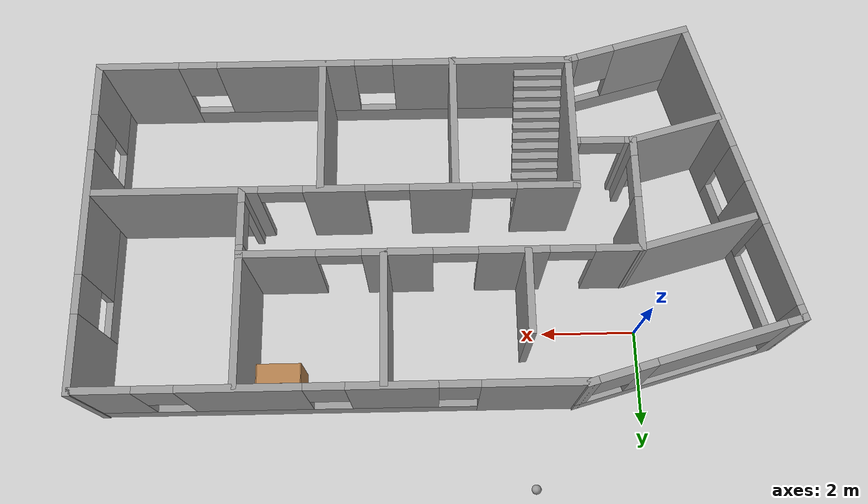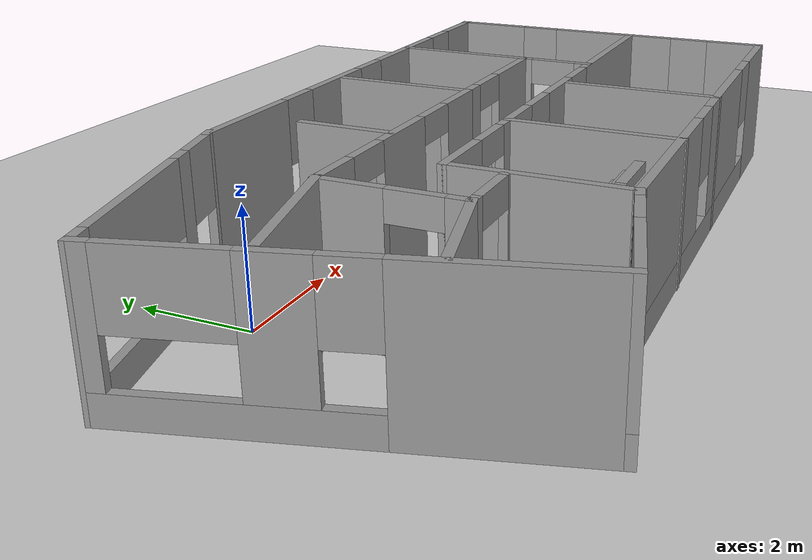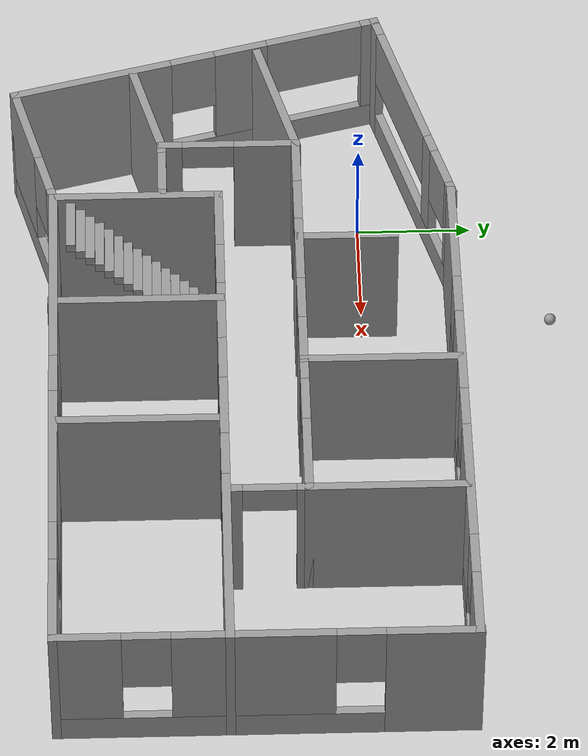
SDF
<sdf version="1.6">
 <world name="default">
  <plugin name="hello" filename="libhello.so"/>
  <light name="sun" type="directional">
   <pose>0 0 10 0 -0 0</pose>
   <diffuse>0.8 0.8 0.8 1</diffuse>
   <specular>0.2 0.2 0.2 1</specular>
   <attenuation>
    <range>1000</range>
    <constant>0.9</constant>
    <linear>0.01</linear>
    <quadratic>0.001</quadratic>
   </attenuation>
   <direction>-0.5 0.1 -0.9</direction>
  </light>
  <model name="ground_plane">
   <static>1</static>
   <link name="link">
    <collision name="collision">
     <geometry><plane><normal>0 0 1</normal><size>100 100</size></plane></geometry>
     <surface>
      <contact><collide_bitmask>65535</collide_bitmask></contact>
      <friction><ode><mu>100</mu><mu2>50</mu2></ode></friction>
     </surface>
    </collision>
    <visual name="visual">
     <cast_shadows>0</cast_shadows>
     <geometry><plane><normal>0 0 1</normal><size>100 100</size></plane></geometry>
     <material>
      <script><uri>file://media/materials/scripts/gazebo.material</uri><name>Gazebo/Grey</name></script>
     </material>
    </visual>
   </link>
  </model>
  <gravity>0 0 -9.8</gravity>
  <magnetic_field>6e-06 2.3e-05 -4.2e-05</magnetic_field>
  <atmosphere type="adiabatic"/>
  <physics name="default_physics" default="0" type="ode">
   <max_step_size>0.001</max_step_size>
   <real_time_factor>1</real_time_factor>
   <real_time_update_rate>1000</real_time_update_rate>
  </physics>
  <scene><ambient>0.4 0.4 0.4 1</ambient><background>0.7 0.7 0.7 1</background><shadows>1</shadows></scene>
  <spherical_coordinates>
   <surface_model>EARTH_WGS84</surface_model>
   <latitude_deg>0</latitude_deg>
   <longitude_deg>0</longitude_deg>
   <elevation>0</elevation>
   <heading_deg>0</heading_deg>
  </spherical_coordinates>
  <model name="Home">
   <pose>4.21636 -2.21791 0 0 -0 0</pose>
   <link name="Stairs_1">
    <visual name="Stairs_1_Visual_0">
     <pose>-2.15165 -0.547903 0.083333 0 -0 0</pose>
     <geometry><box><size>1 0.161041 0.166667</size></box></geometry>
     <material>
      <script><uri>file://media/materials/scripts/gazebo.material</uri><name>Gazebo/Grey</name></script>
      <ambient>1 1 1 1</ambient>
     </material>
     <meta><layer>0</layer></meta>
    </visual>
    <collision name="Stairs_1_Collision_0">
     <geometry><box><size>1 0.161041 0.166667</size></box></geometry>
     <pose>-2.15165 -0.547903 0.083333 0 -0 0</pose>
    </collision>
    <visual name="Stairs_1_Visual_1">
     <pose>-2.15165 -0.708944 0.25 0 -0 0</pose>
     <geometry><box><size>1 0.161041 0.166667</size></box></geometry>
     <material>
      <script><uri>file://media/materials/scripts/gazebo.material</uri><name>Gazebo/Grey</name></script>
      <ambient>1 1 1 1</ambient>
     </material>
     <meta><layer>0</layer></meta>
    </visual>
    <collision name="Stairs_1_Collision_1">
     <geometry><box><size>1 0.161041 0.166667</size></box></geometry>
     <pose>-2.15165 -0.708944 0.25 0 -0 0</pose>
    </collision>
    <visual name="Stairs_1_Visual_2">
     <pose>-2.15165 -0.869986 0.416667 0 -0 0</pose>
     <geometry><box><size>1 0.161041 0.166667</size></box></geometry>
     <material>
      <script><uri>file://media/materials/scripts/gazebo.material</uri><name>Gazebo/Grey</name></script>
      <ambient>1 1 1 1</ambient>
     </material>
     <meta><layer>0</layer></meta>
    </visual>
    <collision name="Stairs_1_Collision_2">
     <geometry><box><size>1 0.161041 0.166667</size></box></geometry>
     <pose>-2.15165 -0.869986 0.416667 0 -0 0</pose>
    </collision>
    <visual name="Stairs_1_Visual_3">
     <pose>-2.15165 -1.03103 0.583333 0 -0 0</pose>
     <geometry><box><size>1 0.161041 0.166667</size></box></geometry>
     <material>
      <script><uri>file://media/materials/scripts/gazebo.material</uri><name>Gazebo/Grey</name></script>
      <ambient>1 1 1 1</ambient>
     </material>
     <meta><layer>0</layer></meta>
    </visual>
    <collision name="Stairs_1_Collision_3">
     <geometry><box><size>1 0.161041 0.166667</size></box></geometry>
     <pose>-2.15165 -1.03103 0.583333 0 -0 0</pose>
    </collision>
    <visual name="Stairs_1_Visual_4">
     <pose>-2.15165 -1.19207 0.75 0 -0 0</pose>
     <geometry><box><size>1 0.161041 0.166667</size></box></geometry>
     <material>
      <script><uri>file://media/materials/scripts/gazebo.material</uri><name>Gazebo/Grey</name></script>
      <ambient>1 1 1 1</ambient>
     </material>
     <meta><layer>0</layer></meta>
    </visual>
    <collision name="Stairs_1_Collision_4">
     <geometry><box><size>1 0.161041 0.166667</size></box></geometry>
     <pose>-2.15165 -1.19207 0.75 0 -0 0</pose>
    </collision>
    <visual name="Stairs_1_Visual_5">
     <pose>-2.15165 -1.35311 0.916667 0 -0 0</pose>
     <geometry><box><size>1 0.161041 0.166667</size></box></geometry>
     <material>
      <script><uri>file://media/materials/scripts/gazebo.material</uri><name>Gazebo/Grey</name></script>
      <ambient>1 1 1 1</ambient>
     </material>
     <meta><layer>0</layer></meta>
    </visual>
    <collision name="Stairs_1_Collision_5">
     <geometry><box><size>1 0.161041 0.166667</size></box></geometry>
     <pose>-2.15165 -1.35311 0.916667 0 -0 0</pose>
    </collision>
    <visual name="Stairs_1_Visual_6">
     <pose>-2.15165 -1.51415 1.08333 0 -0 0</pose>
     <geometry><box><size>1 0.161041 0.166667</size></box></geometry>
     <material>
      <script><uri>file://media/materials/scripts/gazebo.material</uri><name>Gazebo/Grey</name></script>
      <ambient>1 1 1 1</ambient>
     </material>
     <meta><layer>0</layer></meta>
    </visual>
    <collision name="Stairs_1_Collision_6">
     <geometry><box><size>1 0.161041 0.166667</size></box></geometry>
     <pose>-2.15165 -1.51415 1.08333 0 -0 0</pose>
    </collision>
    <visual name="Stairs_1_Visual_7">
     <pose>-2.15165 -1.67519 1.25 0 -0 0</pose>
     <geometry><box><size>1 0.161041 0.166667</size></box></geometry>
     <material>
      <script><uri>file://media/materials/scripts/gazebo.material</uri><name>Gazebo/Grey</name></script>
      <ambient>1 1 1 1</ambient>
     </material>
     <meta><layer>0</layer></meta>
    </visual>
    <collision name="Stairs_1_Collision_7">
     <geometry><box><size>1 0.161041 0.166667</size></box></geometry>
     <pose>-2.15165 -1.67519 1.25 0 -0 0</pose>
    </collision>
    <visual name="Stairs_1_Visual_8">
     <pose>-2.15165 -1.83623 1.41667 0 -0 0</pose>
     <geometry><box><size>1 0.161041 0.166667</size></box></geometry>
     <material>
      <script><uri>file://media/materials/scripts/gazebo.material</uri><name>Gazebo/Grey</name></script>
      <ambient>1 1 1 1</ambient>
     </material>
     <meta><layer>0</layer></meta>
    </visual>
    <collision name="Stairs_1_Collision_8">
     <geometry><box><size>1 0.161041 0.166667</size></box></geometry>
     <pose>-2.15165 -1.83623 1.41667 0 -0 0</pose>
    </collision>
    <visual name="Stairs_1_Visual_9">
     <pose>-2.15165 -1.99727 1.58333 0 -0 0</pose>
     <geometry><box><size>1 0.161041 0.166667</size></box></geometry>
     <material>
      <script><uri>file://media/materials/scripts/gazebo.material</uri><name>Gazebo/Grey</name></script>
      <ambient>1 1 1 1</ambient>
     </material>
     <meta><layer>0</layer></meta>
    </visual>
    <collision name="Stairs_1_Collision_9">
     <geometry><box><size>1 0.161041 0.166667</size></box></geometry>
     <pose>-2.15165 -1.99727 1.58333 0 -0 0</pose>
    </collision>
    <visual name="Stairs_1_Visual_10">
     <pose>-2.15165 -2.15831 1.75 0 -0 0</pose>
     <geometry><box><size>1 0.161041 0.166667</size></box></geometry>
     <material>
      <script><uri>file://media/materials/scripts/gazebo.material</uri><name>Gazebo/Grey</name></script>
      <ambient>1 1 1 1</ambient>
     </material>
     <meta><layer>0</layer></meta>
    </visual>
    <collision name="Stairs_1_Collision_10">
     <geometry><box><size>1 0.161041 0.166667</size></box></geometry>
     <pose>-2.15165 -2.15831 1.75 0 -0 0</pose>
    </collision>
    <visual name="Stairs_1_Visual_11">
     <pose>-2.15165 -2.31935 1.91667 0 -0 0</pose>
     <geometry><box><size>1 0.161041 0.166667</size></box></geometry>
     <material>
      <script><uri>file://media/materials/scripts/gazebo.material</uri><name>Gazebo/Grey</name></script>
      <ambient>1 1 1 1</ambient>
     </material>
     <meta><layer>0</layer></meta>
    </visual>
    <collision name="Stairs_1_Collision_11">
     <geometry><box><size>1 0.161041 0.166667</size></box></geometry>
     <pose>-2.15165 -2.31935 1.91667 0 -0 0</pose>
    </collision>
    <visual name="Stairs_1_Visual_12">
     <pose>-2.15165 -2.4804 2.08333 0 -0 0</pose>
     <geometry><box><size>1 0.161041 0.166667</size></box></geometry>
     <material>
      <script><uri>file://media/materials/scripts/gazebo.material</uri><name>Gazebo/Grey</name></script>
      <ambient>1 1 1 1</ambient>
     </material>
     <meta><layer>0</layer></meta>
    </visual>
    <collision name="Stairs_1_Collision_12">
     <geometry><box><size>1 0.161041 0.166667</size></box></geometry>
     <pose>-2.15165 -2.4804 2.08333 0 -0 0</pose>
    </collision>
    <visual name="Stairs_1_Visual_13">
     <pose>-2.15165 -2.64144 2.25 0 -0 0</pose>
     <geometry><box><size>1 0.161041 0.166667</size></box></geometry>
     <material>
      <script><uri>file://media/materials/scripts/gazebo.material</uri><name>Gazebo/Grey</name></script>
      <ambient>1 1 1 1</ambient>
     </material>
     <meta><layer>0</layer></meta>
    </visual>
    <collision name="Stairs_1_Collision_13">
     <geometry><box><size>1 0.161041 0.166667</size></box></geometry>
     <pose>-2.15165 -2.64144 2.25 0 -0 0</pose>
    </collision>
    <visual name="Stairs_1_Visual_14">
     <pose>-2.15165 -2.80248 2.41667 0 -0 0</pose>
     <geometry><box><size>1 0.161041 0.166667</size></box></geometry>
     <material>
      <script><uri>file://media/materials/scripts/gazebo.material</uri><name>Gazebo/Grey</name></script>
      <ambient>1 1 1 1</ambient>
     </material>
     <meta><layer>0</layer></meta>
    </visual>
    <collision name="Stairs_1_Collision_14">
     <geometry><box><size>1 0.161041 0.166667</size></box></geometry>
     <pose>-2.15165 -2.80248 2.41667 0 -0 0</pose>
    </collision>
   </link>
   <link name="Wall_10">
    <collision name="Wall_10_Collision">
     <geometry><box><size>3 0.15 2.5</size></box></geometry>
     <pose>0 0 1.25 0 -0 0</pose>
    </collision>
    <visual name="Wall_10_Visual">
     <pose>0 0 1.25 0 -0 0</pose>
     <geometry><box><size>3 0.15 2.5</size></box></geometry>
     <material>
      <script><uri>file://media/materials/scripts/gazebo.material</uri><name>Gazebo/Grey</name></script>
      <ambient>1 1 1 1</ambient>
     </material>
     <meta><layer>0</layer></meta>
    </visual>
    <pose>-2.80646 -1.68133 0 0 -0 1.5708</pose>
   </link>
   <link name="Wall_11">
    <pose>2.11854 -0.256327 0 0 -0 0</pose>
    <visual name="Wall_11_Visual_0">
     <pose>-4.36163 0 1.25 0 -0 0</pose>
     <geometry><box><size>1.27675 0.15 2.5</size></box></geometry>
     <material>
      <script><uri>file://media/materials/scripts/gazebo.material</uri><name>Gazebo/Grey</name></script>
      <ambient>1 1 1 1</ambient>
     </material>
     <meta><layer>0</layer></meta>
    </visual>
    <collision name="Wall_11_Collision_0">
     <geometry><box><size>1.27675 0.15 2.5</size></box></geometry>
     <pose>-4.36163 0 1.25 0 -0 0</pose>
    </collision>
    <visual name="Wall_11_Visual_1">
     <pose>-2.18887 0 1.25 0 -0 0</pose>
     <geometry><box><size>1.26877 0.15 2.5</size></box></geometry>
     <material>
      <script><uri>file://media/materials/scripts/gazebo.material</uri><name>Gazebo/Grey</name></script>
      <ambient>1 1 1 1</ambient>
     </material>
     <meta><layer>0</layer></meta>
    </visual>
    <collision name="Wall_11_Collision_1">
     <geometry><box><size>1.26877 0.15 2.5</size></box></geometry>
     <pose>-2.18887 0 1.25 0 -0 0</pose>
    </collision>
    <visual name="Wall_11_Visual_2">
     <pose>-0.028846 0 1.25 0 -0 0</pose>
     <geometry><box><size>1.25128 0.15 2.5</size></box></geometry>
     <material>
      <script><uri>file://media/materials/scripts/gazebo.material</uri><name>Gazebo/Grey</name></script>
      <ambient>1 1 1 1</ambient>
     </material>
     <meta><layer>0</layer></meta>
    </visual>
    <collision name="Wall_11_Collision_2">
     <geometry><box><size>1.25128 0.15 2.5</size></box></geometry>
     <pose>-0.028846 0 1.25 0 -0 0</pose>
    </collision>
    <visual name="Wall_11_Visual_3">
     <pose>3.2484 0 1.25 0 -0 0</pose>
     <geometry><box><size>3.50321 0.15 2.5</size></box></geometry>
     <material>
      <script><uri>file://media/materials/scripts/gazebo.material</uri><name>Gazebo/Grey</name></script>
      <ambient>1 1 1 1</ambient>
     </material>
     <meta><layer>0</layer></meta>
    </visual>
    <collision name="Wall_11_Collision_3">
     <geometry><box><size>3.50321 0.15 2.5</size></box></geometry>
     <pose>3.2484 0 1.25 0 -0 0</pose>
    </collision>
    <visual name="Wall_11_Visual_4">
     <pose>-3.27325 0 2.25 0 -0 0</pose>
     <geometry><box><size>0.9 0.15 0.5</size></box></geometry>
     <material>
      <script><uri>file://media/materials/scripts/gazebo.material</uri><name>Gazebo/Grey</name></script>
      <ambient>1 1 1 1</ambient>
     </material>
     <meta><layer>0</layer></meta>
    </visual>
    <collision name="Wall_11_Collision_4">
     <geometry><box><size>0.9 0.15 0.5</size></box></geometry>
     <pose>-3.27325 0 2.25 0 -0 0</pose>
    </collision>
    <visual name="Wall_11_Visual_5">
     <pose>-1.10448 0 2.25 0 -0 0</pose>
     <geometry><box><size>0.9 0.15 0.5</size></box></geometry>
     <material>
      <script><uri>file://media/materials/scripts/gazebo.material</uri><name>Gazebo/Grey</name></script>
      <ambient>1 1 1 1</ambient>
     </material>
     <meta><layer>0</layer></meta>
    </visual>
    <collision name="Wall_11_Collision_5">
     <geometry><box><size>0.9 0.15 0.5</size></box></geometry>
     <pose>-1.10448 0 2.25 0 -0 0</pose>
    </collision>
    <visual name="Wall_11_Visual_6">
     <pose>1.04679 0 2.25 0 -0 0</pose>
     <geometry><box><size>0.9 0.15 0.5</size></box></geometry>
     <material>
      <script><uri>file://media/materials/scripts/gazebo.material</uri><name>Gazebo/Grey</name></script>
      <ambient>1 1 1 1</ambient>
     </material>
     <meta><layer>0</layer></meta>
    </visual>
    <collision name="Wall_11_Collision_6">
     <geometry><box><size>0.9 0.15 0.5</size></box></geometry>
     <pose>1.04679 0 2.25 0 -0 0</pose>
    </collision>
   </link>
   <link name="Wall_13">
    <pose>3.93489 0.433995 0 0 -0 1.5708</pose>
    <visual name="Wall_13_Visual_0">
     <pose>-0.587699 0 1.25 0 -0 0</pose>
     <geometry><box><size>0.324602 0.15 2.5</size></box></geometry>
     <material>
      <script><uri>file://media/materials/scripts/gazebo.material</uri><name>Gazebo/Grey</name></script>
      <ambient>1 1 1 1</ambient>
     </material>
     <meta><layer>0</layer></meta>
    </visual>
    <collision name="Wall_13_Collision_0">
     <geometry><box><size>0.324602 0.15 2.5</size></box></geometry>
     <pose>-0.587699 0 1.25 0 -0 0</pose>
    </collision>
    <visual name="Wall_13_Visual_1">
     <pose>0.612301 0 1.25 0 -0 0</pose>
     <geometry><box><size>0.275398 0.15 2.5</size></box></geometry>
     <material>
      <script><uri>file://media/materials/scripts/gazebo.material</uri><name>Gazebo/Grey</name></script>
      <ambient>1 1 1 1</ambient>
     </material>
     <meta><layer>0</layer></meta>
    </visual>
    <collision name="Wall_13_Collision_1">
     <geometry><box><size>0.275398 0.15 2.5</size></box></geometry>
     <pose>0.612301 0 1.25 0 -0 0</pose>
    </collision>
    <visual name="Wall_13_Visual_2">
     <pose>0.024602 0 2.25 0 -0 0</pose>
     <geometry><box><size>0.9 0.15 0.5</size></box></geometry>
     <material>
      <script><uri>file://media/materials/scripts/gazebo.material</uri><name>Gazebo/Grey</name></script>
      <ambient>1 1 1 1</ambient>
     </material>
     <meta><layer>0</layer></meta>
    </visual>
    <collision name="Wall_13_Collision_2">
     <geometry><box><size>0.9 0.15 0.5</size></box></geometry>
     <pose>0.024602 0 2.25 0 -0 0</pose>
    </collision>
   </link>
   <link name="Wall_14">
    <pose>2.50989 1.10899 0 0 -0 3.14159</pose>
    <visual name="Wall_14_Visual_0">
     <pose>-0.708057 0 1.25 0 -0 0</pose>
     <geometry><box><size>1.58389 0.15 2.5</size></box></geometry>
     <material>
      <script><uri>file://media/materials/scripts/gazebo.material</uri><name>Gazebo/Grey</name></script>
      <ambient>1 1 1 1</ambient>
     </material>
     <meta><layer>0</layer></meta>
    </visual>
    <collision name="Wall_14_Collision_0">
     <geometry><box><size>1.58389 0.15 2.5</size></box></geometry>
     <pose>-0.708057 0 1.25 0 -0 0</pose>
    </collision>
    <visual name="Wall_14_Visual_1">
     <pose>1.24194 0 1.25 0 -0 0</pose>
     <geometry><box><size>0.516113 0.15 2.5</size></box></geometry>
     <material>
      <script><uri>file://media/materials/scripts/gazebo.material</uri><name>Gazebo/Grey</name></script>
      <ambient>1 1 1 1</ambient>
     </material>
     <meta><layer>0</layer></meta>
    </visual>
    <collision name="Wall_14_Collision_1">
     <geometry><box><size>0.516113 0.15 2.5</size></box></geometry>
     <pose>1.24194 0 1.25 0 -0 0</pose>
    </collision>
    <visual name="Wall_14_Visual_2">
     <pose>0.533887 0 2.25 0 -0 0</pose>
     <geometry><box><size>0.9 0.15 0.5</size></box></geometry>
     <material>
      <script><uri>file://media/materials/scripts/gazebo.material</uri><name>Gazebo/Grey</name></script>
      <ambient>1 1 1 1</ambient>
     </material>
     <meta><layer>0</layer></meta>
    </visual>
    <collision name="Wall_14_Collision_2">
     <geometry><box><size>0.9 0.15 0.5</size></box></geometry>
     <pose>0.533887 0 2.25 0 -0 0</pose>
    </collision>
   </link>
   <link name="Wall_15">
    <collision name="Wall_15_Collision">
     <geometry><box><size>2.75 0.15 2.5</size></box></geometry>
     <pose>0 0 1.25 0 -0 0</pose>
    </collision>
    <visual name="Wall_15_Visual">
     <pose>0 0 1.25 0 -0 0</pose>
     <geometry><box><size>2.75 0.15 2.5</size></box></geometry>
     <material>
      <script><uri>file://media/materials/scripts/gazebo.material</uri><name>Gazebo/Grey</name></script>
      <ambient>1 1 1 1</ambient>
     </material>
     <meta><layer>0</layer></meta>
    </visual>
    <pose>1.08489 2.40899 0 0 -0 1.5708</pose>
   </link>
   <link name="Wall_17">
    <pose>-1.46511 1.10899 0 0 -0 3.14159</pose>
    <visual name="Wall_17_Visual_0">
     <pose>-2.10371 0 1.25 0 -0 0</pose>
     <geometry><box><size>1.04258 0.15 2.5</size></box></geometry>
     <material>
      <script><uri>file://media/materials/scripts/gazebo.material</uri><name>Gazebo/Grey</name></script>
      <ambient>1 1 1 1</ambient>
     </material>
     <meta><layer>0</layer></meta>
    </visual>
    <collision name="Wall_17_Collision_0">
     <geometry><box><size>1.04258 0.15 2.5</size></box></geometry>
     <pose>-2.10371 0 1.25 0 -0 0</pose>
    </collision>
    <visual name="Wall_17_Visual_1">
     <pose>0.021919 0 1.25 0 -0 0</pose>
     <geometry><box><size>1.40869 0.15 2.5</size></box></geometry>
     <material>
      <script><uri>file://media/materials/scripts/gazebo.material</uri><name>Gazebo/Grey</name></script>
      <ambient>1 1 1 1</ambient>
     </material>
     <meta><layer>0</layer></meta>
    </visual>
    <collision name="Wall_17_Collision_1">
     <geometry><box><size>1.40869 0.15 2.5</size></box></geometry>
     <pose>0.021919 0 1.25 0 -0 0</pose>
    </collision>
    <visual name="Wall_17_Visual_2">
     <pose>2.12563 0 1.25 0 -0 0</pose>
     <geometry><box><size>0.998737 0.15 2.5</size></box></geometry>
     <material>
      <script><uri>file://media/materials/scripts/gazebo.material</uri><name>Gazebo/Grey</name></script>
      <ambient>1 1 1 1</ambient>
     </material>
     <meta><layer>0</layer></meta>
    </visual>
    <collision name="Wall_17_Collision_2">
     <geometry><box><size>0.998737 0.15 2.5</size></box></geometry>
     <pose>2.12563 0 1.25 0 -0 0</pose>
    </collision>
    <visual name="Wall_17_Visual_3">
     <pose>-1.13243 0 2.25 0 -0 0</pose>
     <geometry><box><size>0.9 0.15 0.5</size></box></geometry>
     <material>
      <script><uri>file://media/materials/scripts/gazebo.material</uri><name>Gazebo/Grey</name></script>
      <ambient>1 1 1 1</ambient>
     </material>
     <meta><layer>0</layer></meta>
    </visual>
    <collision name="Wall_17_Collision_3">
     <geometry><box><size>0.9 0.15 0.5</size></box></geometry>
     <pose>-1.13243 0 2.25 0 -0 0</pose>
    </collision>
    <visual name="Wall_17_Visual_4">
     <pose>1.17626 0 2.25 0 -0 0</pose>
     <geometry><box><size>0.9 0.15 0.5</size></box></geometry>
     <material>
      <script><uri>file://media/materials/scripts/gazebo.material</uri><name>Gazebo/Grey</name></script>
      <ambient>1 1 1 1</ambient>
     </material>
     <meta><layer>0</layer></meta>
    </visual>
    <collision name="Wall_17_Collision_4">
     <geometry><box><size>0.9 0.15 0.5</size></box></geometry>
     <pose>1.17626 0 2.25 0 -0 0</pose>
    </collision>
   </link>
   <link name="Wall_18">
    <collision name="Wall_18_Collision">
     <geometry><box><size>2.5 0.15 2.5</size></box></geometry>
     <pose>0 0 1.25 0 -0 0</pose>
    </collision>
    <visual name="Wall_18_Visual">
     <pose>0 0 1.25 0 -0 0</pose>
     <geometry><box><size>2.5 0.15 2.5</size></box></geometry>
     <material>
      <script><uri>file://media/materials/scripts/gazebo.material</uri><name>Gazebo/Grey</name></script>
      <ambient>1 1 1 1</ambient>
     </material>
     <meta><layer>0</layer></meta>
    </visual>
    <pose>-5.15007 0.804882 0 0 0 -2.87979</pose>
   </link>
   <link name="Wall_2">
    <pose>2.11854 3.76116 0 0 -0 0</pose>
    <visual name="Wall_2_Visual_0">
     <pose>-3.93436 0 1.25 0 -0 0</pose>
     <geometry><box><size>2.13129 0.15 2.5</size></box></geometry>
     <material>
      <script><uri>file://media/materials/scripts/gazebo.material</uri><name>Gazebo/Grey</name></script>
      <ambient>1 1 1 1</ambient>
     </material>
     <meta><layer>0</layer></meta>
    </visual>
    <collision name="Wall_2_Collision_0">
     <geometry><box><size>2.13129 0.15 2.5</size></box></geometry>
     <pose>-3.93436 0 1.25 0 -0 0</pose>
    </collision>
    <visual name="Wall_2_Visual_1">
     <pose>1.06564 0 0.25 0 -0 0</pose>
     <geometry><box><size>7.86871 0.15 0.5</size></box></geometry>
     <material>
      <script><uri>file://media/materials/scripts/gazebo.material</uri><name>Gazebo/Grey</name></script>
      <ambient>1 1 1 1</ambient>
     </material>
     <meta><layer>0</layer></meta>
    </visual>
    <collision name="Wall_2_Collision_1">
     <geometry><box><size>7.86871 0.15 0.5</size></box></geometry>
     <pose>1.06564 0 0.25 0 -0 0</pose>
    </collision>
    <visual name="Wall_2_Visual_2">
     <pose>-1.18319 0 1.5 0 -0 0</pose>
     <geometry><box><size>1.77104 0.15 2</size></box></geometry>
     <material>
      <script><uri>file://media/materials/scripts/gazebo.material</uri><name>Gazebo/Grey</name></script>
      <ambient>1 1 1 1</ambient>
     </material>
     <meta><layer>0</layer></meta>
    </visual>
    <collision name="Wall_2_Collision_2">
     <geometry><box><size>1.77104 0.15 2</size></box></geometry>
     <pose>-1.18319 0 1.5 0 -0 0</pose>
    </collision>
    <visual name="Wall_2_Visual_3">
     <pose>1.71142 0 1.5 0 -0 0</pose>
     <geometry><box><size>2.41817 0.15 2</size></box></geometry>
     <material>
      <script><uri>file://media/materials/scripts/gazebo.material</uri><name>Gazebo/Grey</name></script>
      <ambient>1 1 1 1</ambient>
     </material>
     <meta><layer>0</layer></meta>
    </visual>
    <collision name="Wall_2_Collision_3">
     <geometry><box><size>2.41817 0.15 2</size></box></geometry>
     <pose>1.71142 0 1.5 0 -0 0</pose>
    </collision>
    <visual name="Wall_2_Visual_4">
     <pose>4.36025 0 1.5 0 -0 0</pose>
     <geometry><box><size>1.2795 0.15 2</size></box></geometry>
     <material>
      <script><uri>file://media/materials/scripts/gazebo.material</uri><name>Gazebo/Grey</name></script>
      <ambient>1 1 1 1</ambient>
     </material>
     <meta><layer>0</layer></meta>
    </visual>
    <collision name="Wall_2_Collision_4">
     <geometry><box><size>1.2795 0.15 2</size></box></geometry>
     <pose>4.36025 0 1.5 0 -0 0</pose>
    </collision>
    <visual name="Wall_2_Visual_5">
     <pose>-2.46871 0 1.9 0 -0 0</pose>
     <geometry><box><size>0.8 0.15 1.2</size></box></geometry>
     <material>
      <script><uri>file://media/materials/scripts/gazebo.material</uri><name>Gazebo/Grey</name></script>
      <ambient>1 1 1 1</ambient>
     </material>
     <meta><layer>0</layer></meta>
    </visual>
    <collision name="Wall_2_Collision_5">
     <geometry><box><size>0.8 0.15 1.2</size></box></geometry>
     <pose>-2.46871 0 1.9 0 -0 0</pose>
    </collision>
    <visual name="Wall_2_Visual_6">
     <pose>0.10233 0 1.9 0 -0 0</pose>
     <geometry><box><size>0.8 0.15 1.2</size></box></geometry>
     <material>
      <script><uri>file://media/materials/scripts/gazebo.material</uri><name>Gazebo/Grey</name></script>
      <ambient>1 1 1 1</ambient>
     </material>
     <meta><layer>0</layer></meta>
    </visual>
    <collision name="Wall_2_Collision_6">
     <geometry><box><size>0.8 0.15 1.2</size></box></geometry>
     <pose>0.10233 0 1.9 0 -0 0</pose>
    </collision>
    <visual name="Wall_2_Visual_7">
     <pose>3.3205 0 1.9 0 -0 0</pose>
     <geometry><box><size>0.8 0.15 1.2</size></box></geometry>
     <material>
      <script><uri>file://media/materials/scripts/gazebo.material</uri><name>Gazebo/Grey</name></script>
      <ambient>1 1 1 1</ambient>
     </material>
     <meta><layer>0</layer></meta>
    </visual>
    <collision name="Wall_2_Collision_7">
     <geometry><box><size>0.8 0.15 1.2</size></box></geometry>
     <pose>3.3205 0 1.9 0 -0 0</pose>
    </collision>
   </link>
   <link name="Wall_20">
    <pose>-4.01511 -0.048515 0 0 0 -1.5708</pose>
    <visual name="Wall_20_Visual_0">
     <pose>-0.65756 0 1.25 0 -0 0</pose>
     <geometry><box><size>1.1499 0.15 2.5</size></box></geometry>
     <material>
      <script><uri>file://media/materials/scripts/gazebo.material</uri><name>Gazebo/Grey</name></script>
      <ambient>1 1 1 1</ambient>
     </material>
     <meta><layer>0</layer></meta>
    </visual>
    <collision name="Wall_20_Collision_0">
     <geometry><box><size>1.1499 0.15 2.5</size></box></geometry>
     <pose>-0.65756 0 1.25 0 -0 0</pose>
    </collision>
    <visual name="Wall_20_Visual_1">
     <pose>1.02495 0 1.25 0 -0 0</pose>
     <geometry><box><size>0.415119 0.15 2.5</size></box></geometry>
     <material>
      <script><uri>file://media/materials/scripts/gazebo.material</uri><name>Gazebo/Grey</name></script>
      <ambient>1 1 1 1</ambient>
     </material>
     <meta><layer>0</layer></meta>
    </visual>
    <collision name="Wall_20_Collision_1">
     <geometry><box><size>0.415119 0.15 2.5</size></box></geometry>
     <pose>1.02495 0 1.25 0 -0 0</pose>
    </collision>
    <visual name="Wall_20_Visual_2">
     <pose>0.367391 0 2.25 0 -0 0</pose>
     <geometry><box><size>0.9 0.15 0.5</size></box></geometry>
     <material>
      <script><uri>file://media/materials/scripts/gazebo.material</uri><name>Gazebo/Grey</name></script>
      <ambient>1 1 1 1</ambient>
     </material>
     <meta><layer>0</layer></meta>
    </visual>
    <collision name="Wall_20_Collision_2">
     <geometry><box><size>0.9 0.15 0.5</size></box></geometry>
     <pose>0.367391 0 2.25 0 -0 0</pose>
    </collision>
   </link>
   <link name="Wall_21">
    <collision name="Wall_21_Collision">
     <geometry><box><size>2 0.15 2.5</size></box></geometry>
     <pose>0 0 1.25 0 -0 0</pose>
    </collision>
    <visual name="Wall_21_Visual">
     <pose>0 0 1.25 0 -0 0</pose>
     <geometry><box><size>2 0.15 2.5</size></box></geometry>
     <material>
      <script><uri>file://media/materials/scripts/gazebo.material</uri><name>Gazebo/Grey</name></script>
      <ambient>1 1 1 1</ambient>
     </material>
     <meta><layer>0</layer></meta>
    </visual>
    <pose>-4.90859 -1.46292 0 0 0 -2.87979</pose>
   </link>
   <link name="Wall_23">
    <pose>-3.46511 -1.22352 0 0 -0 0</pose>
    <visual name="Wall_23_Visual_0">
     <pose>-0.501668 0 1.25 0 -0 0</pose>
     <geometry><box><size>0.246664 0.15 2.5</size></box></geometry>
     <material>
      <script><uri>file://media/materials/scripts/gazebo.material</uri><name>Gazebo/Grey</name></script>
      <ambient>1 1 1 1</ambient>
     </material>
     <meta><layer>0</layer></meta>
    </visual>
    <collision name="Wall_23_Collision_0">
     <geometry><box><size>0.246664 0.15 2.5</size></box></geometry>
     <pose>-0.501668 0 1.25 0 -0 0</pose>
    </collision>
    <visual name="Wall_23_Visual_1">
     <pose>0.573332 0 1.25 0 -0 0</pose>
     <geometry><box><size>0.103336 0.15 2.5</size></box></geometry>
     <material>
      <script><uri>file://media/materials/scripts/gazebo.material</uri><name>Gazebo/Grey</name></script>
      <ambient>1 1 1 1</ambient>
     </material>
     <meta><layer>0</layer></meta>
    </visual>
    <collision name="Wall_23_Collision_1">
     <geometry><box><size>0.103336 0.15 2.5</size></box></geometry>
     <pose>0.573332 0 1.25 0 -0 0</pose>
    </collision>
    <visual name="Wall_23_Visual_2">
     <pose>0.071664 0 2.25 0 -0 0</pose>
     <geometry><box><size>0.9 0.15 0.5</size></box></geometry>
     <material>
      <script><uri>file://media/materials/scripts/gazebo.material</uri><name>Gazebo/Grey</name></script>
      <ambient>1 1 1 1</ambient>
     </material>
     <meta><layer>0</layer></meta>
    </visual>
    <collision name="Wall_23_Collision_2">
     <geometry><box><size>0.9 0.15 0.5</size></box></geometry>
     <pose>0.071664 0 2.25 0 -0 0</pose>
    </collision>
   </link>
   <link name="Wall_25">
    <collision name="Wall_25_Collision">
     <geometry><box><size>2.75 0.15 2.5</size></box></geometry>
     <pose>0 0 1.25 0 -0 0</pose>
    </collision>
    <visual name="Wall_25_Visual">
     <pose>0 0 1.25 0 -0 0</pose>
     <geometry><box><size>2.75 0.15 2.5</size></box></geometry>
     <material>
      <script><uri>file://media/materials/scripts/gazebo.material</uri><name>Gazebo/Grey</name></script>
      <ambient>1 1 1 1</ambient>
     </material>
     <meta><layer>0</layer></meta>
    </visual>
    <pose>3.93489 2.40899 0 0 -0 1.5708</pose>
   </link>
   <link name="Wall_27">
    <collision name="Wall_27_Collision">
     <geometry><box><size>3 0.15 2.5</size></box></geometry>
     <pose>0 0 1.25 0 -0 0</pose>
    </collision>
    <visual name="Wall_27_Visual">
     <pose>0 0 1.25 0 -0 0</pose>
     <geometry><box><size>3 0.15 2.5</size></box></geometry>
     <material>
      <script><uri>file://media/materials/scripts/gazebo.material</uri><name>Gazebo/Grey</name></script>
      <ambient>1 1 1 1</ambient>
     </material>
     <meta><layer>0</layer></meta>
    </visual>
    <pose>2.36079 -1.6835 0 0 0 -1.5708</pose>
   </link>
   <link name="Wall_29">
    <collision name="Wall_29_Collision">
     <geometry><box><size>3 0.15 2.5</size></box></geometry>
     <pose>0 0 1.25 0 -0 0</pose>
    </collision>
    <visual name="Wall_29_Visual">
     <pose>0 0 1.25 0 -0 0</pose>
     <geometry><box><size>3 0.15 2.5</size></box></geometry>
     <material>
      <script><uri>file://media/materials/scripts/gazebo.material</uri><name>Gazebo/Grey</name></script>
      <ambient>1 1 1 1</ambient>
     </material>
     <meta><layer>0</layer></meta>
    </visual>
    <pose>-0.367664 -1.70099 0 0 0 -1.5708</pose>
   </link>
   <link name="Wall_31">
    <collision name="Wall_31_Collision">
     <geometry><box><size>1.75 0.15 2.5</size></box></geometry>
     <pose>0 0 1.25 0 -0 0</pose>
    </collision>
    <visual name="Wall_31_Visual">
     <pose>0 0 1.25 0 -0 0</pose>
     <geometry><box><size>1.75 0.15 2.5</size></box></geometry>
     <material>
      <script><uri>file://media/materials/scripts/gazebo.material</uri><name>Gazebo/Grey</name></script>
      <ambient>1 1 1 1</ambient>
     </material>
     <meta><layer>0</layer></meta>
    </visual>
    <pose>-1.76687 1.94071 0 0 -0 1.5708</pose>
   </link>
   <link name="Wall_4">
    <pose>7.04354 0.336163 0 0 0 -1.5708</pose>
    <visual name="Wall_4_Visual_0">
     <pose>-2.71956 0 1.25 0 -0 0</pose>
     <geometry><box><size>1.59585 0.15 2.5</size></box></geometry>
     <material>
      <script><uri>file://media/materials/scripts/gazebo.material</uri><name>Gazebo/Grey</name></script>
      <ambient>1 1 1 1</ambient>
     </material>
     <meta><layer>0</layer></meta>
    </visual>
    <collision name="Wall_4_Collision_0">
     <geometry><box><size>1.59585 0.15 2.5</size></box></geometry>
     <pose>-2.71956 0 1.25 0 -0 0</pose>
    </collision>
    <visual name="Wall_4_Visual_1">
     <pose>0.797925 0 0.25 0 -0 0</pose>
     <geometry><box><size>5.43913 0.15 0.5</size></box></geometry>
     <material>
      <script><uri>file://media/materials/scripts/gazebo.material</uri><name>Gazebo/Grey</name></script>
      <ambient>1 1 1 1</ambient>
     </material>
     <meta><layer>0</layer></meta>
    </visual>
    <collision name="Wall_4_Collision_1">
     <geometry><box><size>5.43913 0.15 0.5</size></box></geometry>
     <pose>0.797925 0 0.25 0 -0 0</pose>
    </collision>
    <visual name="Wall_4_Visual_2">
     <pose>0.209877 0 1.5 0 -0 0</pose>
     <geometry><box><size>2.66303 0.15 2</size></box></geometry>
     <material>
      <script><uri>file://media/materials/scripts/gazebo.material</uri><name>Gazebo/Grey</name></script>
      <ambient>1 1 1 1</ambient>
     </material>
     <meta><layer>0</layer></meta>
    </visual>
    <collision name="Wall_4_Collision_2">
     <geometry><box><size>2.66303 0.15 2</size></box></geometry>
     <pose>0.209877 0 1.5 0 -0 0</pose>
    </collision>
    <visual name="Wall_4_Visual_3">
     <pose>2.92944 0 1.5 0 -0 0</pose>
     <geometry><box><size>1.1761 0.15 2</size></box></geometry>
     <material>
      <script><uri>file://media/materials/scripts/gazebo.material</uri><name>Gazebo/Grey</name></script>
      <ambient>1 1 1 1</ambient>
     </material>
     <meta><layer>0</layer></meta>
    </visual>
    <collision name="Wall_4_Collision_3">
     <geometry><box><size>1.1761 0.15 2</size></box></geometry>
     <pose>2.92944 0 1.5 0 -0 0</pose>
    </collision>
    <visual name="Wall_4_Visual_4">
     <pose>-1.52164 0 1.9 0 -0 0</pose>
     <geometry><box><size>0.8 0.15 1.2</size></box></geometry>
     <material>
      <script><uri>file://media/materials/scripts/gazebo.material</uri><name>Gazebo/Grey</name></script>
      <ambient>1 1 1 1</ambient>
     </material>
     <meta><layer>0</layer></meta>
    </visual>
    <collision name="Wall_4_Collision_4">
     <geometry><box><size>0.8 0.15 1.2</size></box></geometry>
     <pose>-1.52164 0 1.9 0 -0 0</pose>
    </collision>
    <visual name="Wall_4_Visual_5">
     <pose>1.94139 0 1.9 0 -0 0</pose>
     <geometry><box><size>0.8 0.15 1.2</size></box></geometry>
     <material>
      <script><uri>file://media/materials/scripts/gazebo.material</uri><name>Gazebo/Grey</name></script>
      <ambient>1 1 1 1</ambient>
     </material>
     <meta><layer>0</layer></meta>
    </visual>
    <collision name="Wall_4_Collision_5">
     <geometry><box><size>0.8 0.15 1.2</size></box></geometry>
     <pose>1.94139 0 1.9 0 -0 0</pose>
    </collision>
   </link>
   <link name="Wall_5">
    <pose>2.11854 -3.10633 0 0 -0 3.14159</pose>
    <visual name="Wall_5_Visual_0">
     <pose>-4.13288 0 1.25 0 -0 0</pose>
     <geometry><box><size>1.73424 0.15 2.5</size></box></geometry>
     <material>
      <script><uri>file://media/materials/scripts/gazebo.material</uri><name>Gazebo/Grey</name></script>
      <ambient>1 1 1 1</ambient>
     </material>
     <meta><layer>0</layer></meta>
    </visual>
    <collision name="Wall_5_Collision_0">
     <geometry><box><size>1.73424 0.15 2.5</size></box></geometry>
     <pose>-4.13288 0 1.25 0 -0 0</pose>
    </collision>
    <visual name="Wall_5_Visual_1">
     <pose>0.86712 0 0.25 0 -0 0</pose>
     <geometry><box><size>8.26576 0.15 0.5</size></box></geometry>
     <material>
      <script><uri>file://media/materials/scripts/gazebo.material</uri><name>Gazebo/Grey</name></script>
      <ambient>1 1 1 1</ambient>
     </material>
     <meta><layer>0</layer></meta>
    </visual>
    <collision name="Wall_5_Collision_1">
     <geometry><box><size>8.26576 0.15 0.5</size></box></geometry>
     <pose>0.86712 0 0.25 0 -0 0</pose>
    </collision>
    <visual name="Wall_5_Visual_2">
     <pose>-1.02056 0 1.5 0 -0 0</pose>
     <geometry><box><size>2.8904 0.15 2</size></box></geometry>
     <material>
      <script><uri>file://media/materials/scripts/gazebo.material</uri><name>Gazebo/Grey</name></script>
      <ambient>1 1 1 1</ambient>
     </material>
     <meta><layer>0</layer></meta>
    </visual>
    <collision name="Wall_5_Collision_2">
     <geometry><box><size>2.8904 0.15 2</size></box></geometry>
     <pose>-1.02056 0 1.5 0 -0 0</pose>
    </collision>
    <visual name="Wall_5_Visual_3">
     <pose>3.11232 0 1.5 0 -0 0</pose>
     <geometry><box><size>3.77536 0.15 2</size></box></geometry>
     <material>
      <script><uri>file://media/materials/scripts/gazebo.material</uri><name>Gazebo/Grey</name></script>
      <ambient>1 1 1 1</ambient>
     </material>
     <meta><layer>0</layer></meta>
    </visual>
    <collision name="Wall_5_Collision_3">
     <geometry><box><size>3.77536 0.15 2</size></box></geometry>
     <pose>3.11232 0 1.5 0 -0 0</pose>
    </collision>
    <visual name="Wall_5_Visual_4">
     <pose>-2.86576 0 1.9 0 -0 0</pose>
     <geometry><box><size>0.8 0.15 1.2</size></box></geometry>
     <material>
      <script><uri>file://media/materials/scripts/gazebo.material</uri><name>Gazebo/Grey</name></script>
      <ambient>1 1 1 1</ambient>
     </material>
     <meta><layer>0</layer></meta>
    </visual>
    <collision name="Wall_5_Collision_4">
     <geometry><box><size>0.8 0.15 1.2</size></box></geometry>
     <pose>-2.86576 0 1.9 0 -0 0</pose>
    </collision>
    <visual name="Wall_5_Visual_5">
     <pose>0.824643 0 1.9 0 -0 0</pose>
     <geometry><box><size>0.8 0.15 1.2</size></box></geometry>
     <material>
      <script><uri>file://media/materials/scripts/gazebo.material</uri><name>Gazebo/Grey</name></script>
      <ambient>1 1 1 1</ambient>
     </material>
     <meta><layer>0</layer></meta>
    </visual>
    <collision name="Wall_5_Collision_5">
     <geometry><box><size>0.8 0.15 1.2</size></box></geometry>
     <pose>0.824643 0 1.9 0 -0 0</pose>
    </collision>
   </link>
   <link name="Wall_6">
    <pose>-4.06217 -3.44279 0 0 0 -2.87979</pose>
    <visual name="Wall_6_Visual_0">
     <pose>-1.23551 0 1.25 0 -0 0</pose>
     <geometry><box><size>0.278982 0.15 2.5</size></box></geometry>
     <material>
      <script><uri>file://media/materials/scripts/gazebo.material</uri><name>Gazebo/Grey</name></script>
      <ambient>1 1 1 1</ambient>
     </material>
     <meta><layer>0</layer></meta>
    </visual>
    <collision name="Wall_6_Collision_0">
     <geometry><box><size>0.278982 0.15 2.5</size></box></geometry>
     <pose>-1.23551 0 1.25 0 -0 0</pose>
    </collision>
    <visual name="Wall_6_Visual_1">
     <pose>0.139491 0 0.25 0 -0 0</pose>
     <geometry><box><size>2.47102 0.15 0.5</size></box></geometry>
     <material>
      <script><uri>file://media/materials/scripts/gazebo.material</uri><name>Gazebo/Grey</name></script>
      <ambient>1 1 1 1</ambient>
     </material>
     <meta><layer>0</layer></meta>
    </visual>
    <collision name="Wall_6_Collision_1">
     <geometry><box><size>2.47102 0.15 0.5</size></box></geometry>
     <pose>0.139491 0 0.25 0 -0 0</pose>
    </collision>
    <visual name="Wall_6_Visual_2">
     <pose>0.539491 0 1.5 0 -0 0</pose>
     <geometry><box><size>1.67102 0.15 2</size></box></geometry>
     <material>
      <script><uri>file://media/materials/scripts/gazebo.material</uri><name>Gazebo/Grey</name></script>
      <ambient>1 1 1 1</ambient>
     </material>
     <meta><layer>0</layer></meta>
    </visual>
    <collision name="Wall_6_Collision_2">
     <geometry><box><size>1.67102 0.15 2</size></box></geometry>
     <pose>0.539491 0 1.5 0 -0 0</pose>
    </collision>
    <visual name="Wall_6_Visual_3">
     <pose>-0.696018 0 1.9 0 -0 0</pose>
     <geometry><box><size>0.8 0.15 1.2</size></box></geometry>
     <material>
      <script><uri>file://media/materials/scripts/gazebo.material</uri><name>Gazebo/Grey</name></script>
      <ambient>1 1 1 1</ambient>
     </material>
     <meta><layer>0</layer></meta>
    </visual>
    <collision name="Wall_6_Collision_3">
     <geometry><box><size>0.8 0.15 1.2</size></box></geometry>
     <pose>-0.696018 0 1.9 0 -0 0</pose>
    </collision>
   </link>
   <link name="Wall_7">
    <pose>-6.17197 -0.591702 0 0 -0 1.8326</pose>
    <visual name="Wall_7_Visual_0">
     <pose>-1.91889 0 1.25 0 -0 0</pose>
     <geometry><box><size>2.91222 0.15 2.5</size></box></geometry>
     <material>
      <script><uri>file://media/materials/scripts/gazebo.material</uri><name>Gazebo/Grey</name></script>
      <ambient>1 1 1 1</ambient>
     </material>
     <meta><layer>0</layer></meta>
    </visual>
    <collision name="Wall_7_Collision_0">
     <geometry><box><size>2.91222 0.15 2.5</size></box></geometry>
     <pose>-1.91889 0 1.25 0 -0 0</pose>
    </collision>
    <visual name="Wall_7_Visual_1">
     <pose>1.45611 0 0.25 0 -0 0</pose>
     <geometry><box><size>3.83778 0.15 0.5</size></box></geometry>
     <material>
      <script><uri>file://media/materials/scripts/gazebo.material</uri><name>Gazebo/Grey</name></script>
      <ambient>1 1 1 1</ambient>
     </material>
     <meta><layer>0</layer></meta>
    </visual>
    <collision name="Wall_7_Collision_1">
     <geometry><box><size>3.83778 0.15 0.5</size></box></geometry>
     <pose>1.45611 0 0.25 0 -0 0</pose>
    </collision>
    <visual name="Wall_7_Visual_2">
     <pose>0.819353 0 1.5 0 -0 0</pose>
     <geometry><box><size>0.964264 0.15 2</size></box></geometry>
     <material>
      <script><uri>file://media/materials/scripts/gazebo.material</uri><name>Gazebo/Grey</name></script>
      <ambient>1 1 1 1</ambient>
     </material>
     <meta><layer>0</layer></meta>
    </visual>
    <collision name="Wall_7_Collision_2">
     <geometry><box><size>0.964264 0.15 2</size></box></geometry>
     <pose>0.819353 0 1.5 0 -0 0</pose>
    </collision>
    <visual name="Wall_7_Visual_3">
     <pose>3.20752 0 1.5 0 -0 0</pose>
     <geometry><box><size>0.334961 0.15 2</size></box></geometry>
     <material>
      <script><uri>file://media/materials/scripts/gazebo.material</uri><name>Gazebo/Grey</name></script>
      <ambient>1 1 1 1</ambient>
     </material>
     <meta><layer>0</layer></meta>
    </visual>
    <collision name="Wall_7_Collision_3">
     <geometry><box><size>0.334961 0.15 2</size></box></geometry>
     <pose>3.20752 0 1.5 0 -0 0</pose>
    </collision>
    <visual name="Wall_7_Visual_4">
     <pose>-0.062779 0 1.9 0 -0 0</pose>
     <geometry><box><size>0.8 0.15 1.2</size></box></geometry>
     <material>
      <script><uri>file://media/materials/scripts/gazebo.material</uri><name>Gazebo/Grey</name></script>
      <ambient>1 1 1 1</ambient>
     </material>
     <meta><layer>0</layer></meta>
    </visual>
    <collision name="Wall_7_Collision_4">
     <geometry><box><size>0.8 0.15 1.2</size></box></geometry>
     <pose>-0.062779 0 1.9 0 -0 0</pose>
    </collision>
    <visual name="Wall_7_Visual_5">
     <pose>2.17076 0 1.9 0 -0 0</pose>
     <geometry><box><size>1.73855 0.15 1.2</size></box></geometry>
     <material>
      <script><uri>file://media/materials/scripts/gazebo.material</uri><name>Gazebo/Grey</name></script>
      <ambient>1 1 1 1</ambient>
     </material>
     <meta><layer>0</layer></meta>
    </visual>
    <collision name="Wall_7_Collision_5">
     <geometry><box><size>1.73855 0.15 1.2</size></box></geometry>
     <pose>2.17076 0 1.9 0 -0 0</pose>
    </collision>
   </link>
   <link name="Wall_8">
    <pose>-4.91627 3.18725 0 0 -0 0.273296</pose>
    <visual name="Wall_8_Visual_0">
     <pose>-2.04634 0 1.25 0 -0 0</pose>
     <geometry><box><size>0.439584 0.15 2.5</size></box></geometry>
     <material>
      <script><uri>file://media/materials/scripts/gazebo.material</uri><name>Gazebo/Grey</name></script>
      <ambient>1 1 1 1</ambient>
     </material>
     <meta><layer>0</layer></meta>
    </visual>
    <collision name="Wall_8_Collision_0">
     <geometry><box><size>0.439584 0.15 2.5</size></box></geometry>
     <pose>-2.04634 0 1.25 0 -0 0</pose>
    </collision>
    <visual name="Wall_8_Visual_1">
     <pose>0.219792 0 0.25 0 -0 0</pose>
     <geometry><box><size>4.09267 0.15 0.5</size></box></geometry>
     <material>
      <script><uri>file://media/materials/scripts/gazebo.material</uri><name>Gazebo/Grey</name></script>
      <ambient>1 1 1 1</ambient>
     </material>
     <meta><layer>0</layer></meta>
    </visual>
    <collision name="Wall_8_Collision_1">
     <geometry><box><size>4.09267 0.15 0.5</size></box></geometry>
     <pose>0.219792 0 0.25 0 -0 0</pose>
    </collision>
    <visual name="Wall_8_Visual_2">
     <pose>1.01491 0 1.5 0 -0 0</pose>
     <geometry><box><size>0.385654 0.15 2</size></box></geometry>
     <material>
      <script><uri>file://media/materials/scripts/gazebo.material</uri><name>Gazebo/Grey</name></script>
      <ambient>1 1 1 1</ambient>
     </material>
     <meta><layer>0</layer></meta>
    </visual>
    <collision name="Wall_8_Collision_2">
     <geometry><box><size>0.385654 0.15 2</size></box></geometry>
     <pose>1.01491 0 1.5 0 -0 0</pose>
    </collision>
    <visual name="Wall_8_Visual_3">
     <pose>2.13693 0 1.5 0 -0 0</pose>
     <geometry><box><size>0.258393 0.15 2</size></box></geometry>
     <material>
      <script><uri>file://media/materials/scripts/gazebo.material</uri><name>Gazebo/Grey</name></script>
      <ambient>1 1 1 1</ambient>
     </material>
     <meta><layer>0</layer></meta>
    </visual>
    <collision name="Wall_8_Collision_3">
     <geometry><box><size>0.258393 0.15 2</size></box></geometry>
     <pose>2.13693 0 1.5 0 -0 0</pose>
    </collision>
    <visual name="Wall_8_Visual_4">
     <pose>-0.502232 0 1.9 0 -0 0</pose>
     <geometry><box><size>2.64862 0.15 1.2</size></box></geometry>
     <material>
      <script><uri>file://media/materials/scripts/gazebo.material</uri><name>Gazebo/Grey</name></script>
      <ambient>1 1 1 1</ambient>
     </material>
     <meta><layer>0</layer></meta>
    </visual>
    <collision name="Wall_8_Collision_4">
     <geometry><box><size>2.64862 0.15 1.2</size></box></geometry>
     <pose>-0.502232 0 1.9 0 -0 0</pose>
    </collision>
    <visual name="Wall_8_Visual_5">
     <pose>1.60773 0 1.9 0 -0 0</pose>
     <geometry><box><size>0.8 0.15 1.2</size></box></geometry>
     <material>
      <script><uri>file://media/materials/scripts/gazebo.material</uri><name>Gazebo/Grey</name></script>
      <ambient>1 1 1 1</ambient>
     </material>
     <meta><layer>0</layer></meta>
    </visual>
    <collision name="Wall_8_Collision_5">
     <geometry><box><size>0.8 0.15 1.2</size></box></geometry>
     <pose>1.60773 0 1.9 0 -0 0</pose>
    </collision>
   </link>
   <static>1</static>
  </model>
  <model name="bookshelf">
   <static>1</static>
   <link name="link">
    <inertial><mass>1</mass></inertial>
    <collision name="back">
     <pose>0 0.005 0.6 0 -0 0</pose>
     <geometry><box><size>0.9 0.01 1.2</size></box></geometry>
    </collision>
    <visual name="visual1">
     <pose>0 0.005 0.6 0 -0 0</pose>
     <geometry><box><size>0.9 0.01 1.2</size></box></geometry>
     <material>
      <script><uri>file://media/materials/scripts/gazebo.material</uri><name>Gazebo/Wood</name></script>
     </material>
    </visual>
    <collision name="left_side">
     <pose>0.45 -0.195 0.6 0 -0 0</pose>
     <geometry><box><size>0.02 0.4 1.2</size></box></geometry>
    </collision>
    <visual name="visual2">
     <pose>0.45 -0.195 0.6 0 -0 0</pose>
     <geometry><box><size>0.02 0.4 1.2</size></box></geometry>
     <material>
      <script><uri>file://media/materials/scripts/gazebo.material</uri><name>Gazebo/Wood</name></script>
     </material>
    </visual>
    <collision name="right_side">
     <pose>-0.45 -0.195 0.6 0 -0 0</pose>
     <geometry><box><size>0.02 0.4 1.2</size></box></geometry>
    </collision>
    <visual name="visual3">
     <pose>-0.45 -0.195 0.6 0 -0 0</pose>
     <geometry><box><size>0.02 0.4 1.2</size></box></geometry>
     <material>
      <script><uri>file://media/materials/scripts/gazebo.material</uri><name>Gazebo/Wood</name></script>
     </material>
    </visual>
    <collision name="bottom">
     <pose>0 -0.195 0.03 0 -0 0</pose>
     <geometry><box><size>0.88 0.4 0.06</size></box></geometry>
    </collision>
    <visual name="visual4">
     <pose>0 -0.195 0.03 0 -0 0</pose>
     <geometry><box><size>0.88 0.4 0.06</size></box></geometry>
     <material>
      <script><uri>file://media/materials/scripts/gazebo.material</uri><name>Gazebo/Wood</name></script>
     </material>
    </visual>
    <collision name="top">
     <pose>0 -0.195 1.19 0 -0 0</pose>
     <geometry><box><size>0.88 0.4 0.02</size></box></geometry>
    </collision>
    <visual name="visual5">
     <pose>0 -0.195 1.19 0 -0 0</pose>
     <geometry><box><size>0.88 0.4 0.02</size></box></geometry>
     <material>
      <script><uri>file://media/materials/scripts/gazebo.material</uri><name>Gazebo/Wood</name></script>
     </material>
    </visual>
    <collision name="low_shelf">
     <pose>0 -0.195 0.43 0 -0 0</pose>
     <geometry><box><size>0.88 0.4 0.02</size></box></geometry>
    </collision>
    <visual name="visual6">
     <pose>0 -0.195 0.43 0 -0 0</pose>
     <geometry><box><size>0.88 0.4 0.02</size></box></geometry>
     <material>
      <script><uri>file://media/materials/scripts/gazebo.material</uri><name>Gazebo/Wood</name></script>
     </material>
    </visual>
    <collision name="high_shelf">
     <pose>0 -0.195 0.8 0 -0 0</pose>
     <geometry><box><size>0.88 0.4 0.02</size></box></geometry>
    </collision>
    <visual name="visual7">
     <pose>0 -0.195 0.8 0 -0 0</pose>
     <geometry><box><size>0.88 0.4 0.02</size></box></geometry>
     <material>
      <script><uri>file://media/materials/scripts/gazebo.material</uri><name>Gazebo/Wood</name></script>
     </material>
    </visual>
   </link>
   <pose>7.49936 1.19588 0 0 -0 0</pose>
  </model>
  <model name="my_ball">
   <link name="link_0">
    <inertial>
     <mass>1</mass>
     <inertia><ixx>0.1</ixx><ixy>0</ixy><ixz>0</ixz><iyy>0.1</iyy><iyz>0</iyz><izz>0.1</izz></inertia>
    </inertial>
    <visual name="visual">
     <geometry><sphere><radius>0.1</radius></sphere></geometry>
     <material>
      <lighting>1</lighting>
      <script><uri>file://media/materials/scripts/gazebo.material</uri><name>Gazebo/Grey</name></script>
      <shader type="pixel"><normal_map>__default__</normal_map></shader>
      <ambient>1 1 1 1</ambient>
      <diffuse>1 1 1 1</diffuse>
      <specular>1 1 1 1</specular>
      <emissive>1 1 1 1</emissive>
     </material>
    </visual>
    <collision name="collision">
     <geometry><sphere><radius>0.1</radius></sphere></geometry>
     <surface>
      <friction>
       <ode><mu>1</mu><mu2>1</mu2><fdir1>0 0 0</fdir1><slip1>0</slip1><slip2>0</slip2></ode>
       <torsional>
        <coefficient>1</coefficient>
        <patch_radius>0</patch_radius>
        <surface_radius>0</surface_radius>
        <use_patch_radius>1</use_patch_radius>
        <ode><slip>0</slip></ode>
       </torsional>
      </friction>
      <bounce><restitution_coefficient>0</restitution_coefficient><threshold>1e+06</threshold></bounce>
      <contact>
       <collide_without_contact>0</collide_without_contact>
       <collide_without_contact_bitmask>1</collide_without_contact_bitmask>
       <collide_bitmask>1</collide_bitmask>
       <ode>
        <soft_cfm>0</soft_cfm>
        <soft_erp>0.2</soft_erp>
        <kp>1e+13</kp>
        <kd>1</kd>
        <max_vel>0.01</max_vel>
        <min_depth>0</min_depth>
       </ode>
       <bullet>
        <split_impulse>1</split_impulse>
        <split_impulse_penetration_threshold>-0.01</split_impulse_penetration_threshold>
        <soft_cfm>0</soft_cfm>
        <soft_erp>0.2</soft_erp>
        <kp>1e+13</kp>
        <kd>1</kd>
       </bullet>
      </contact>
     </surface>
    </collision>
   </link>
   <static>0</static>
   <pose>2.28831 3.29146 0.1 0 -0 0</pose>
  </model>
 </world>
</sdf>
